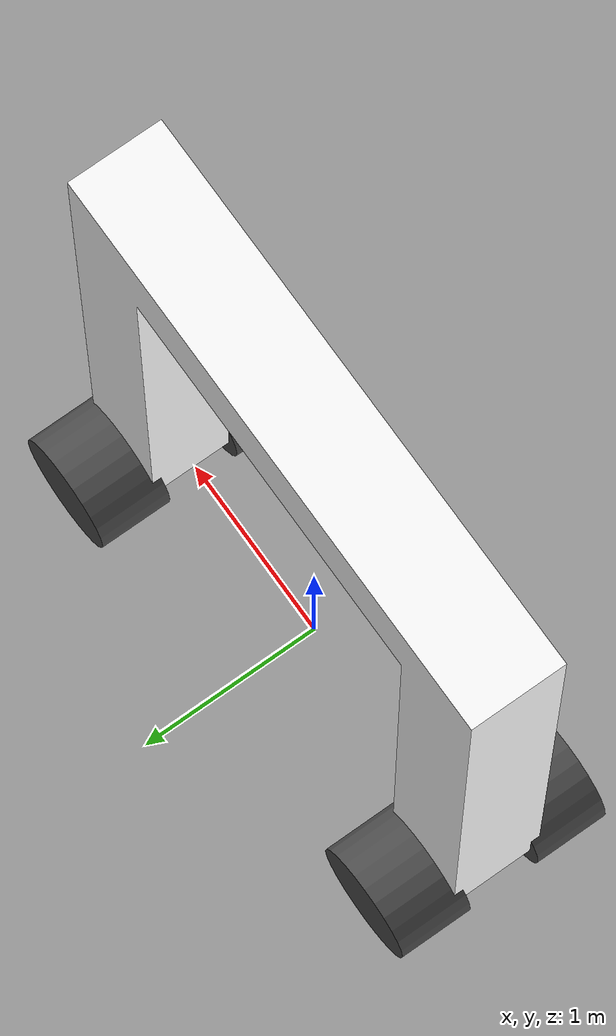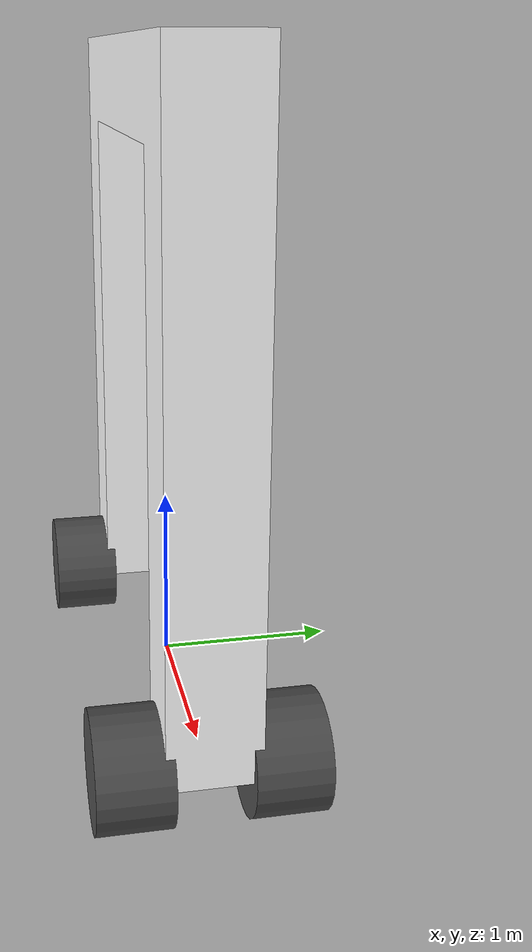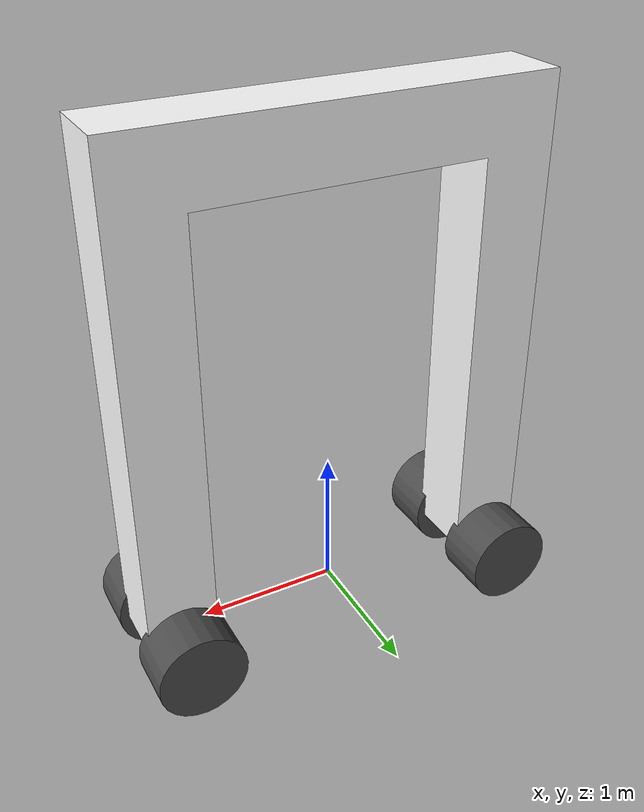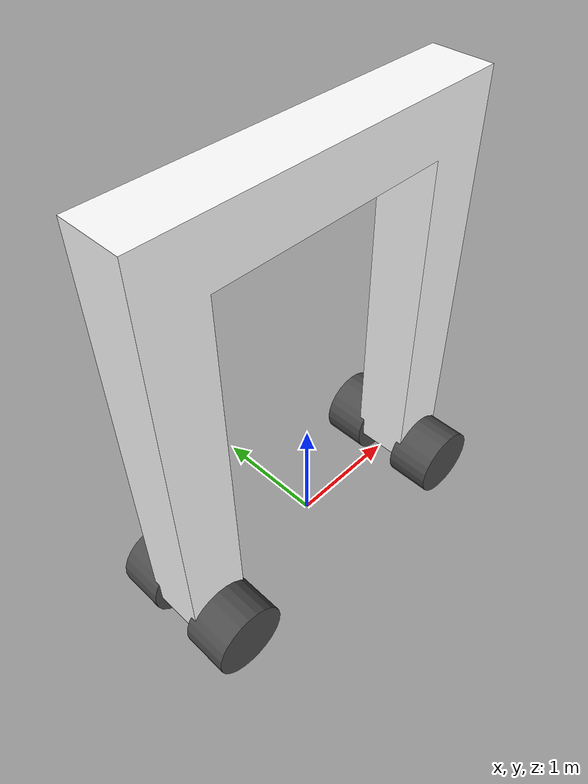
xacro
<?xml version="1.0"?>

<robot  name="door" xmlns:xacro="http://www.ros.org/wiki/xacro">

  <xacro:arg name="door1_namespace" default="/door1" />

  <xacro:property name="M_PI" value="3.14159"/>

  <!-- Wheel Properties -->
  <xacro:property name="wheel_width" value="0.4" />
  <xacro:property name="wheel_radius" value="0.3175" />
  <xacro:property name="wheel_mass" value="15" />

  <xacro:property name="wheel_x" value="1.25" />
  <xacro:property name="wheel_y" value="0.4" />
  <xacro:property name="wheel_z" value="0.03282" />

  <xacro:property name="ground_clearance" value="0.03282" />

  <link
    name="door1_link">
    <inertial>
      <origin
        xyz="3.3277E-16 -8.568E-17 2.137"
        rpy="0 0 0" />
      <mass
        value="2300" />
      <inertia
        ixx="2942.44202898551"
        ixy="-2.51419255784905E-14"
        ixz="-4.52751463534133E-13"
        iyy="5911.19202898551"
        iyz="-2.33810555457744E-14"
        izz="3064.58333333333" />
    </inertial>
    <visual>
      <origin
        xyz="0 0 ${ground_clearance}"
        rpy="0 0 0" />
      <geometry>
        <mesh
          filename="package://door_description/meshes/door.STL" />
      </geometry>
      <material
        name="">
        <color
          rgba="1 1 1 1" />
      </material>
    </visual>
    <collision>
      <origin
        xyz="0 0 ${ground_clearance}"
        rpy="0 0 0" />
      <geometry>
        <mesh
          filename="package://door_description/meshes/door.STL" />
      </geometry>
    </collision>
  </link>

  <xacro:macro name="door_wheel" params="wheel_prefix parent *joint_pose flipY">
    <link name="${wheel_prefix}_wheel_link">
      <inertial>
        <mass value="${wheel_mass}" />
        <origin xyz="-0.002 -0.198 0.003" />
        <inertia  ixx="14.68" ixy="-0.033" ixz="0.07" iyy="26.7" iyz="-0.05" izz="14.68" />
      </inertial>
      <visual>
        <origin xyz="0 0 0" rpy="${M_PI/2} ${flipY*M_PI} 0" />
        <geometry>
          <cylinder length="${wheel_width}" radius="${wheel_radius}" />
        </geometry>
        <material name="DarkGrey" />
      </visual>
      <collision>
        <origin xyz="0 0 0" rpy="${M_PI/2} ${flipY*M_PI} 0" />
        <geometry>
          <cylinder length="${wheel_width}" radius="${wheel_radius}" />
        </geometry>
      </collision>
    </link>

    <joint name="${wheel_prefix}_wheel" type="continuous">
      <parent link="${parent}"/>
      <child link="${wheel_prefix}_wheel_link"/>
      <xacro:insert_block name="joint_pose"/>
      <axis xyz="0 1 0" rpy="0 0 0" />
      <joint_properties damping="0.0" friction="0.0" />
    </joint>

    <transmission name="${wheel_prefix}_wheel_trans" type="SimpleTransmission">
      <type>transmission_interface/SimpleTransmission</type>
      <actuator name="${wheel_prefix}_wheel_motor">
        <mechanicalReduction>1</mechanicalReduction>
      </actuator>
      <joint name="${wheel_prefix}_wheel">
        <hardwareInterface>hardware_interface/VelocityJointInterface</hardwareInterface>
      </joint>
    </transmission>
  </xacro:macro>

  <!-- door wheel macros -->
  <xacro:door_wheel wheel_prefix="door1_front_left" parent="door1_link" flipY="0">
    <origin xyz="${wheel_x} ${wheel_y} ${wheel_z}" rpy="0 0 0" />
  </xacro:door_wheel>
  <xacro:door_wheel wheel_prefix="door1_front_right" parent="door1_link" flipY="1">
    <origin xyz="${wheel_x} ${-wheel_y} ${wheel_z}" rpy="0 0 0" />
  </xacro:door_wheel>
  <xacro:door_wheel wheel_prefix="door1_rear_left" parent="door1_link" flipY="0">
    <origin xyz="${-wheel_x} ${wheel_y} ${wheel_z}" rpy="0 0 0" />
  </xacro:door_wheel>
  <xacro:door_wheel wheel_prefix="door1_rear_right" parent="door1_link" flipY="1">
    <origin xyz="${-wheel_x} ${-wheel_y} ${wheel_z}" rpy="0 0 0" />
  </xacro:door_wheel>

  <gazebo>
    <plugin name="gazebo_ros_control" filename="libgazebo_ros_control.so">
      <robotNamespace>$(arg door1_namespace)</robotNamespace>
    </plugin>
  </gazebo>

  <gazebo reference="door1_front_left_wheel_link">
    <mu1 value="1.0"/>
    <mu2 value="1.0"/>
    <kp value="10000000.0" />
    <kd value="1.0" />
    <fdir1 value="1 0 0"/>
    <material>Gazebo/Grey</material>
          <selfCollide>true</selfCollide>
  </gazebo>

  <gazebo reference="door1_front_right_wheel_link">
    <mu1 value="1.0"/>
    <mu2 value="1.0"/>
    <kp value="10000000.0" />
    <kd value="1.0" />
    <fdir1 value="1 0 0"/>
    <material>Gazebo/Grey</material>
          <selfCollide>true</selfCollide>
  </gazebo>

  <gazebo reference="door1_rear_left_wheel_link">
    <mu1 value="1.0"/>
    <mu2 value="1.0"/>
    <kp value="10000000.0" />
    <kd value="1.0" />
    <fdir1 value="1 0 0"/>
    <material>Gazebo/Grey</material>
          <selfCollide>true</selfCollide>
  </gazebo>

  <gazebo reference="door1_rear_right_wheel_link">
    <mu1 value="1.0"/>
    <mu2 value="1.0"/>
    <kp value="10000000.0" />
    <kd value="1.0" />
    <fdir1 value="1 0 0"/>
    <material>Gazebo/Grey</material>
          <selfCollide>true</selfCollide>
  </gazebo>

  <gazebo reference="door1_link">
    <material>Gazebo/Red</material>
    <turnGravityOff>false</turnGravityOff>
  </gazebo>

</robot>
